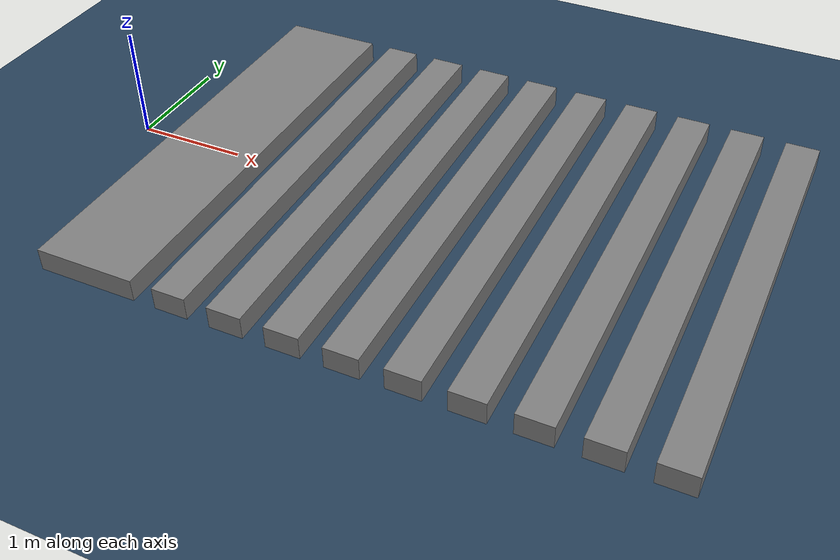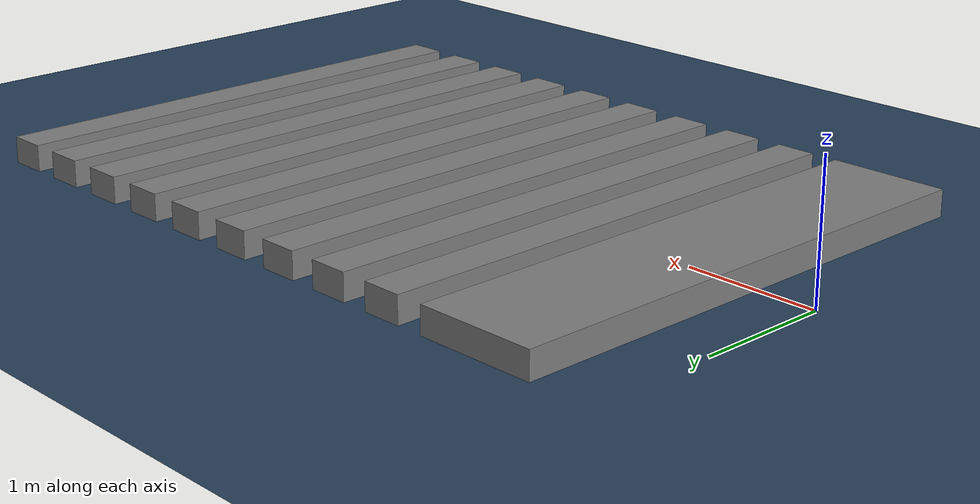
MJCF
<mujoco model="empty_world">

  <statistic center="0 0 0.1" extent="0.8"/>

  <visual>
    <headlight diffuse="0.6 0.6 0.6" ambient="0.3 0.3 0.3" specular="0 0 0"/>
    <rgba haze="0.15 0.25 0.35 1"/>
    <global azimuth="-130" elevation="-20"/>
  </visual>

  <asset>
    <texture type="skybox" builtin="gradient" rgb1="0.3 0.5 0.7" rgb2="0 0 0" width="512" height="3072"/>
    <texture type="2d" name="groundplane" builtin="checker" mark="edge" rgb1="0.2 0.3 0.4" rgb2="0.1 0.2 0.3"
      markrgb="0.8 0.8 0.8" width="300" height="300"/>
    <material name="groundplane" texture="groundplane" texuniform="true" texrepeat="5 5" reflectance="0.2"/>
  </asset>

  <worldbody>
    <light pos="0 0 1.5" dir="0 0 -1" directional="true"/>
    <geom name="floor" size="0 0 0.05" type="plane" material="groundplane"/>

    <geom pos="0.9 0 0.10" type="box"  size="0.45 2 0.10" quat="1.0 0 0 0"/>
    <geom pos="1.7 0 0.10" type="box"  size="0.15 2 0.10" quat="1.0 0 0 0"/>
    <geom pos="2.2 0 0.10" type="box"  size="0.15 2 0.10" quat="1.0 0 0 0"/>
    <geom pos="2.7 0 0.10" type="box"  size="0.15 2 0.10" quat="1.0 0 0 0"/>
    <geom pos="3.2 0 0.10" type="box"  size="0.15 2 0.10" quat="1.0 0 0 0"/>
    <geom pos="3.7 0 0.10" type="box"  size="0.15 2 0.10" quat="1.0 0 0 0"/>
    <geom pos="4.2 0 0.10" type="box"  size="0.15 2 0.10" quat="1.0 0 0 0"/>
    <geom pos="4.7 0 0.10" type="box"  size="0.15 2 0.10" quat="1.0 0 0 0"/>
    <geom pos="5.2 0 0.10" type="box"  size="0.15 2 0.10" quat="1.0 0 0 0"/>
    <geom pos="5.7 0 0.10" type="box"  size="0.15 2 0.10" quat="1.0 0 0 0"/>

  </worldbody>
</mujoco>
